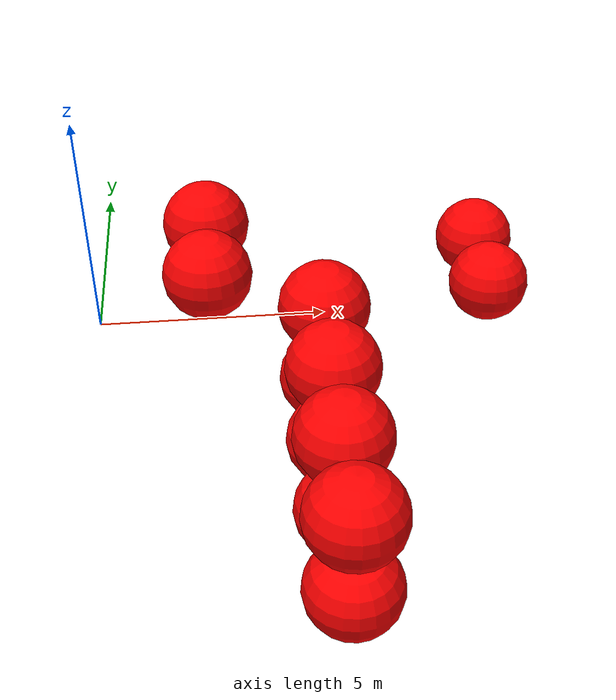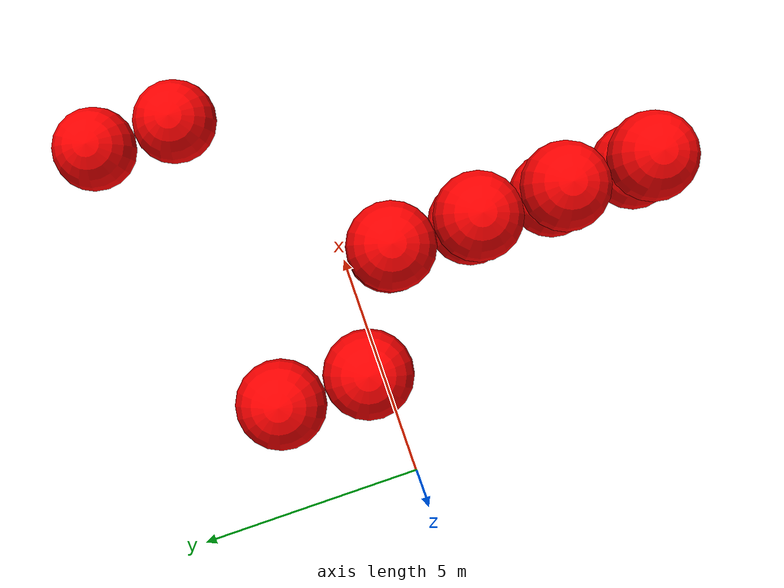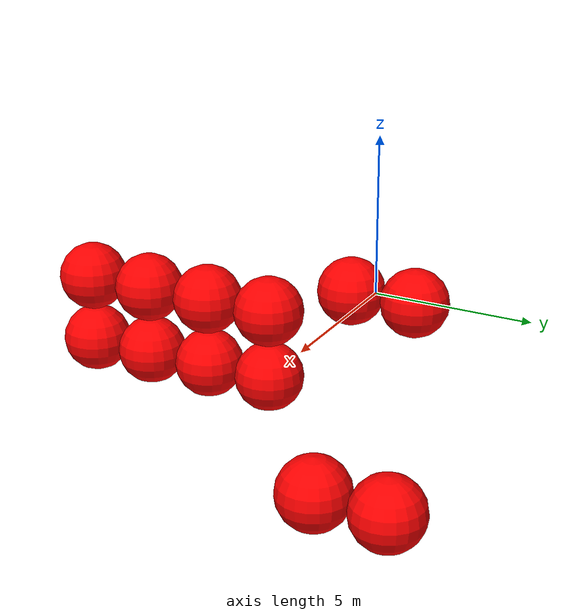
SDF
<sdf version="1.8">
 <world name="3d_world">
  <model name="obstacle_9" canonical_link="obstacle">
   <static>true</static>
   <pose relative_to="world">4.91 -7.06 -1.00 0 0 0</pose>
   <link name="obstacle">
    <pose relative_to="__model__">0.0 0 0.0 0 0 0</pose>
    <visual name="visual">
     <geometry><sphere><radius>1.00</radius></sphere></geometry>
     <material>
      <ambient>1.0 0.0 0.0 1</ambient>
      <diffuse>1.0 0.0 0.0 1</diffuse>
      <specular>1.0 0.0 0.0 1</specular>
     </material>
    </visual>
    <collision name="collision"><geometry><sphere><radius>1.00</radius></sphere></geometry></collision>
    <enable_gravity>false</enable_gravity>
   </link>
   <plugin filename="ignition-gazebo-velocity-control-system" name="ignition::gazebo::systems::VelocityControl">
    <initial_linear>0.00 0.00 0.00</initial_linear>
    <initial_angular>0 0 0</initial_angular>
   </plugin>
   <plugin filename="ignition-gazebo-odometry-publisher-system" name="ignition::gazebo::systems::OdometryPublisher">
    <dimensions>3</dimensions>
   </plugin>
  </model>
  <model name="obstacle_10" canonical_link="obstacle">
   <static>true</static>
   <pose relative_to="world">4.91 -5.06 -1.00 0 0 0</pose>
   <link name="obstacle">
    <pose relative_to="__model__">0.0 0 0.0 0 0 0</pose>
    <visual name="visual">
     <geometry><sphere><radius>1.00</radius></sphere></geometry>
     <material>
      <ambient>1.0 0.0 0.0 1</ambient>
      <diffuse>1.0 0.0 0.0 1</diffuse>
      <specular>1.0 0.0 0.0 1</specular>
     </material>
    </visual>
    <collision name="collision"><geometry><sphere><radius>1.00</radius></sphere></geometry></collision>
    <enable_gravity>false</enable_gravity>
   </link>
   <plugin filename="ignition-gazebo-velocity-control-system" name="ignition::gazebo::systems::VelocityControl">
    <initial_linear>0.00 0.00 0.00</initial_linear>
    <initial_angular>0 0 0</initial_angular>
   </plugin>
   <plugin filename="ignition-gazebo-odometry-publisher-system" name="ignition::gazebo::systems::OdometryPublisher">
    <dimensions>3</dimensions>
   </plugin>
  </model>
  <model name="obstacle_11" canonical_link="obstacle">
   <static>true</static>
   <pose relative_to="world">4.91 -3.06 -1.00 0 0 0</pose>
   <link name="obstacle">
    <pose relative_to="__model__">0.0 0 0.0 0 0 0</pose>
    <visual name="visual">
     <geometry><sphere><radius>1.00</radius></sphere></geometry>
     <material>
      <ambient>1.0 0.0 0.0 1</ambient>
      <diffuse>1.0 0.0 0.0 1</diffuse>
      <specular>1.0 0.0 0.0 1</specular>
     </material>
    </visual>
    <collision name="collision"><geometry><sphere><radius>1.00</radius></sphere></geometry></collision>
    <enable_gravity>false</enable_gravity>
   </link>
   <plugin filename="ignition-gazebo-velocity-control-system" name="ignition::gazebo::systems::VelocityControl">
    <initial_linear>0.00 0.00 0.00</initial_linear>
    <initial_angular>0 0 0</initial_angular>
   </plugin>
   <plugin filename="ignition-gazebo-odometry-publisher-system" name="ignition::gazebo::systems::OdometryPublisher">
    <dimensions>3</dimensions>
   </plugin>
  </model>
  <model name="obstacle_12" canonical_link="obstacle">
   <static>true</static>
   <pose relative_to="world">4.91 -1.06 -1.00 0 0 0</pose>
   <link name="obstacle">
    <pose relative_to="__model__">0.0 0 0.0 0 0 0</pose>
    <visual name="visual">
     <geometry><sphere><radius>1.00</radius></sphere></geometry>
     <material>
      <ambient>1.0 0.0 0.0 1</ambient>
      <diffuse>1.0 0.0 0.0 1</diffuse>
      <specular>1.0 0.0 0.0 1</specular>
     </material>
    </visual>
    <collision name="collision"><geometry><sphere><radius>1.00</radius></sphere></geometry></collision>
    <enable_gravity>false</enable_gravity>
   </link>
   <plugin filename="ignition-gazebo-velocity-control-system" name="ignition::gazebo::systems::VelocityControl">
    <initial_linear>0.00 0.00 0.00</initial_linear>
    <initial_angular>0 0 0</initial_angular>
   </plugin>
   <plugin filename="ignition-gazebo-odometry-publisher-system" name="ignition::gazebo::systems::OdometryPublisher">
    <dimensions>3</dimensions>
   </plugin>
  </model>
  <model name="obstacle_13" canonical_link="obstacle">
   <static>true</static>
   <pose relative_to="world">4.91 -7.06 1.00 0 0 0</pose>
   <link name="obstacle">
    <pose relative_to="__model__">0.0 0 0.0 0 0 0</pose>
    <visual name="visual">
     <geometry><sphere><radius>1.00</radius></sphere></geometry>
     <material>
      <ambient>1.0 0.0 0.0 1</ambient>
      <diffuse>1.0 0.0 0.0 1</diffuse>
      <specular>1.0 0.0 0.0 1</specular>
     </material>
    </visual>
    <collision name="collision"><geometry><sphere><radius>1.00</radius></sphere></geometry></collision>
    <enable_gravity>false</enable_gravity>
   </link>
   <plugin filename="ignition-gazebo-velocity-control-system" name="ignition::gazebo::systems::VelocityControl">
    <initial_linear>0.00 0.00 0.00</initial_linear>
    <initial_angular>0 0 0</initial_angular>
   </plugin>
   <plugin filename="ignition-gazebo-odometry-publisher-system" name="ignition::gazebo::systems::OdometryPublisher">
    <dimensions>3</dimensions>
   </plugin>
  </model>
  <model name="obstacle_14" canonical_link="obstacle">
   <static>true</static>
   <pose relative_to="world">4.91 -5.06 1.00 0 0 0</pose>
   <link name="obstacle">
    <pose relative_to="__model__">0.0 0 0.0 0 0 0</pose>
    <visual name="visual">
     <geometry><sphere><radius>1.00</radius></sphere></geometry>
     <material>
      <ambient>1.0 0.0 0.0 1</ambient>
      <diffuse>1.0 0.0 0.0 1</diffuse>
      <specular>1.0 0.0 0.0 1</specular>
     </material>
    </visual>
    <collision name="collision"><geometry><sphere><radius>1.00</radius></sphere></geometry></collision>
    <enable_gravity>false</enable_gravity>
   </link>
   <plugin filename="ignition-gazebo-velocity-control-system" name="ignition::gazebo::systems::VelocityControl">
    <initial_linear>0.00 0.00 0.00</initial_linear>
    <initial_angular>0 0 0</initial_angular>
   </plugin>
   <plugin filename="ignition-gazebo-odometry-publisher-system" name="ignition::gazebo::systems::OdometryPublisher">
    <dimensions>3</dimensions>
   </plugin>
  </model>
  <model name="obstacle_15" canonical_link="obstacle">
   <static>true</static>
   <pose relative_to="world">4.91 -3.06 1.00 0 0 0</pose>
   <link name="obstacle">
    <pose relative_to="__model__">0.0 0 0.0 0 0 0</pose>
    <visual name="visual">
     <geometry><sphere><radius>1.00</radius></sphere></geometry>
     <material>
      <ambient>1.0 0.0 0.0 1</ambient>
      <diffuse>1.0 0.0 0.0 1</diffuse>
      <specular>1.0 0.0 0.0 1</specular>
     </material>
    </visual>
    <collision name="collision"><geometry><sphere><radius>1.00</radius></sphere></geometry></collision>
    <enable_gravity>false</enable_gravity>
   </link>
   <plugin filename="ignition-gazebo-velocity-control-system" name="ignition::gazebo::systems::VelocityControl">
    <initial_linear>0.00 0.00 0.00</initial_linear>
    <initial_angular>0 0 0</initial_angular>
   </plugin>
   <plugin filename="ignition-gazebo-odometry-publisher-system" name="ignition::gazebo::systems::OdometryPublisher">
    <dimensions>3</dimensions>
   </plugin>
  </model>
  <model name="obstacle_16" canonical_link="obstacle">
   <static>true</static>
   <pose relative_to="world">4.91 -1.06 1.00 0 0 0</pose>
   <link name="obstacle">
    <pose relative_to="__model__">0.0 0 0.0 0 0 0</pose>
    <visual name="visual">
     <geometry><sphere><radius>1.00</radius></sphere></geometry>
     <material>
      <ambient>1.0 0.0 0.0 1</ambient>
      <diffuse>1.0 0.0 0.0 1</diffuse>
      <specular>1.0 0.0 0.0 1</specular>
     </material>
    </visual>
    <collision name="collision"><geometry><sphere><radius>1.00</radius></sphere></geometry></collision>
    <enable_gravity>false</enable_gravity>
   </link>
   <plugin filename="ignition-gazebo-velocity-control-system" name="ignition::gazebo::systems::VelocityControl">
    <initial_linear>0.00 0.00 0.00</initial_linear>
    <initial_angular>0 0 0</initial_angular>
   </plugin>
   <plugin filename="ignition-gazebo-odometry-publisher-system" name="ignition::gazebo::systems::OdometryPublisher">
    <dimensions>3</dimensions>
   </plugin>
  </model>
  <model name="obstacle_19" canonical_link="obstacle">
   <static>true</static>
   <pose relative_to="world">2.44 0.31 1.00 0 0 0</pose>
   <link name="obstacle">
    <pose relative_to="__model__">0.0 0 0.0 0 0 0</pose>
    <visual name="visual">
     <geometry><sphere><radius>1.00</radius></sphere></geometry>
     <material>
      <ambient>1.0 0.0 0.0 1</ambient>
      <diffuse>1.0 0.0 0.0 1</diffuse>
      <specular>1.0 0.0 0.0 1</specular>
     </material>
    </visual>
    <collision name="collision"><geometry><sphere><radius>1.00</radius></sphere></geometry></collision>
    <enable_gravity>false</enable_gravity>
   </link>
   <plugin filename="ignition-gazebo-velocity-control-system" name="ignition::gazebo::systems::VelocityControl">
    <initial_linear>0.00 0.00 0.00</initial_linear>
    <initial_angular>0 0 0</initial_angular>
   </plugin>
   <plugin filename="ignition-gazebo-odometry-publisher-system" name="ignition::gazebo::systems::OdometryPublisher">
    <dimensions>3</dimensions>
   </plugin>
  </model>
  <model name="obstacle_20" canonical_link="obstacle">
   <static>true</static>
   <pose relative_to="world">2.44 2.31 1.00 0 0 0</pose>
   <link name="obstacle">
    <pose relative_to="__model__">0.0 0 0.0 0 0 0</pose>
    <visual name="visual">
     <geometry><sphere><radius>1.00</radius></sphere></geometry>
     <material>
      <ambient>1.0 0.0 0.0 1</ambient>
      <diffuse>1.0 0.0 0.0 1</diffuse>
      <specular>1.0 0.0 0.0 1</specular>
     </material>
    </visual>
    <collision name="collision"><geometry><sphere><radius>1.00</radius></sphere></geometry></collision>
    <enable_gravity>false</enable_gravity>
   </link>
   <plugin filename="ignition-gazebo-velocity-control-system" name="ignition::gazebo::systems::VelocityControl">
    <initial_linear>0.00 0.00 0.00</initial_linear>
    <initial_angular>0 0 0</initial_angular>
   </plugin>
   <plugin filename="ignition-gazebo-odometry-publisher-system" name="ignition::gazebo::systems::OdometryPublisher">
    <dimensions>3</dimensions>
   </plugin>
  </model>
  <model name="obstacle_22" canonical_link="obstacle">
   <static>false</static>
   <pose relative_to="world">9.46 2.73 -1.43 0 0 0</pose>
   <link name="obstacle">
    <pose relative_to="__model__">0.0 0 0.0 0 0 0</pose>
    <visual name="visual">
     <geometry><sphere><radius>1.00</radius></sphere></geometry>
     <material>
      <ambient>1.0 0.0 0.0 1</ambient>
      <diffuse>1.0 0.0 0.0 1</diffuse>
      <specular>1.0 0.0 0.0 1</specular>
     </material>
    </visual>
    <collision name="collision"><geometry><sphere><radius>1.00</radius></sphere></geometry></collision>
    <enable_gravity>false</enable_gravity>
   </link>
   <plugin filename="ignition-gazebo-velocity-control-system" name="ignition::gazebo::systems::VelocityControl">
    <initial_linear>0.00 -1.54 0.65</initial_linear>
    <initial_angular>0 0 0</initial_angular>
   </plugin>
   <plugin filename="ignition-gazebo-odometry-publisher-system" name="ignition::gazebo::systems::OdometryPublisher">
    <dimensions>3</dimensions>
   </plugin>
  </model>
  <model name="obstacle_23" canonical_link="obstacle">
   <static>false</static>
   <pose relative_to="world">9.46 4.73 -1.43 0 0 0</pose>
   <link name="obstacle">
    <pose relative_to="__model__">0.0 0 0.0 0 0 0</pose>
    <visual name="visual">
     <geometry><sphere><radius>1.00</radius></sphere></geometry>
     <material>
      <ambient>1.0 0.0 0.0 1</ambient>
      <diffuse>1.0 0.0 0.0 1</diffuse>
      <specular>1.0 0.0 0.0 1</specular>
     </material>
    </visual>
    <collision name="collision"><geometry><sphere><radius>1.00</radius></sphere></geometry></collision>
    <enable_gravity>false</enable_gravity>
   </link>
   <plugin filename="ignition-gazebo-velocity-control-system" name="ignition::gazebo::systems::VelocityControl">
    <initial_linear>0.00 -1.54 0.65</initial_linear>
    <initial_angular>0 0 0</initial_angular>
   </plugin>
   <plugin filename="ignition-gazebo-odometry-publisher-system" name="ignition::gazebo::systems::OdometryPublisher">
    <dimensions>3</dimensions>
   </plugin>
  </model>
 </world>
</sdf>
